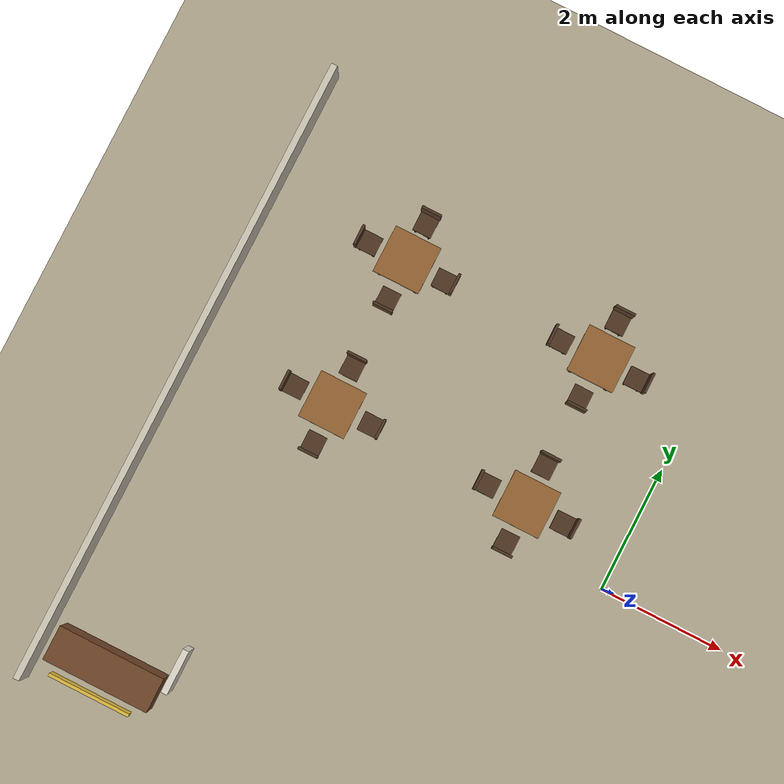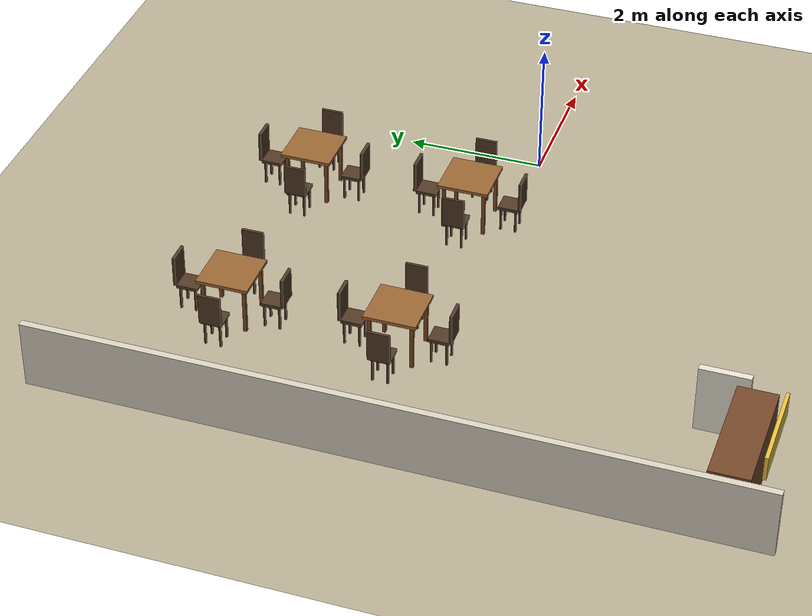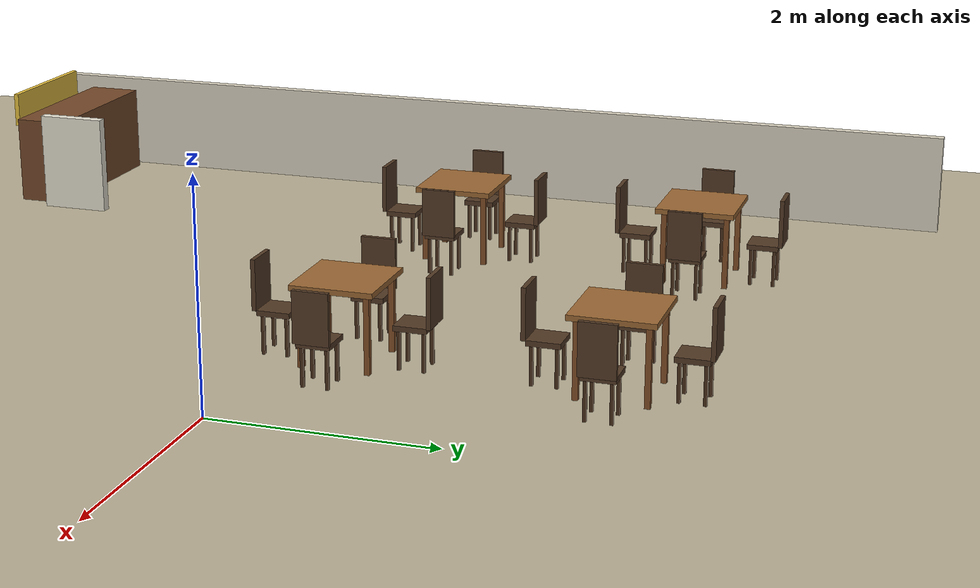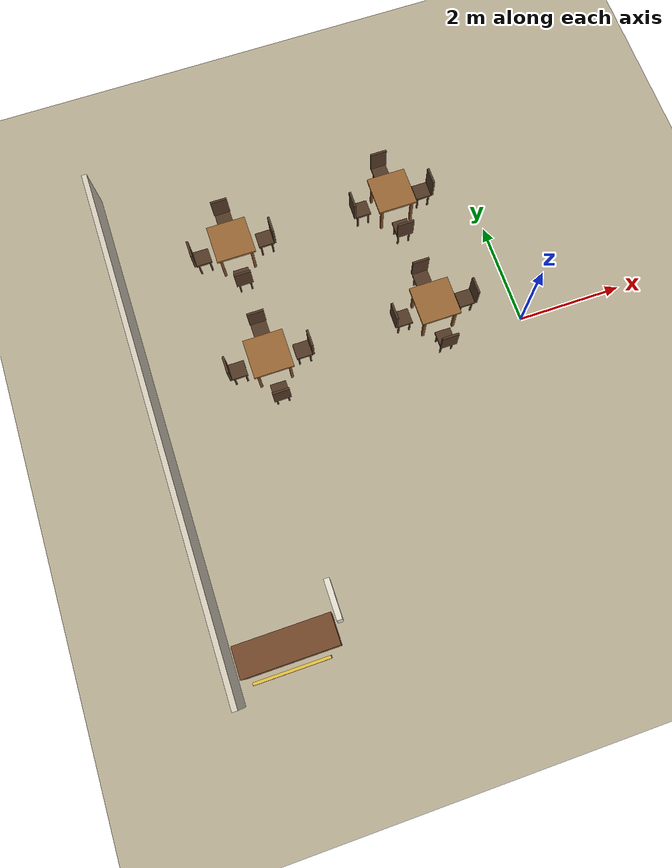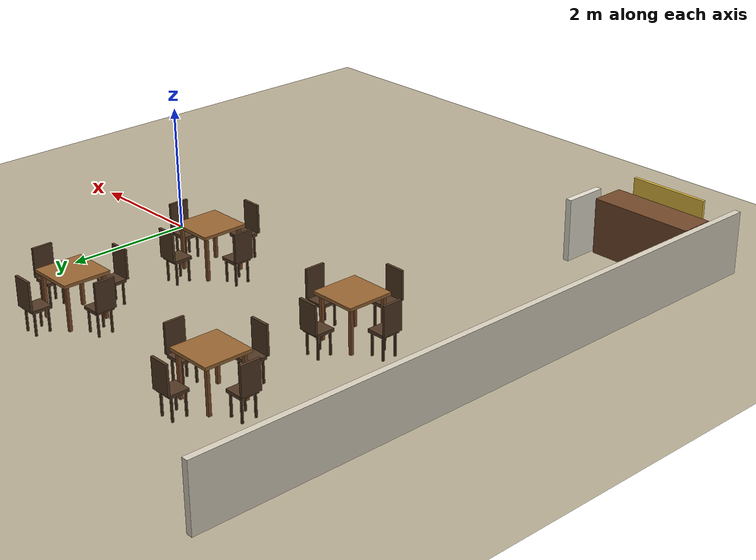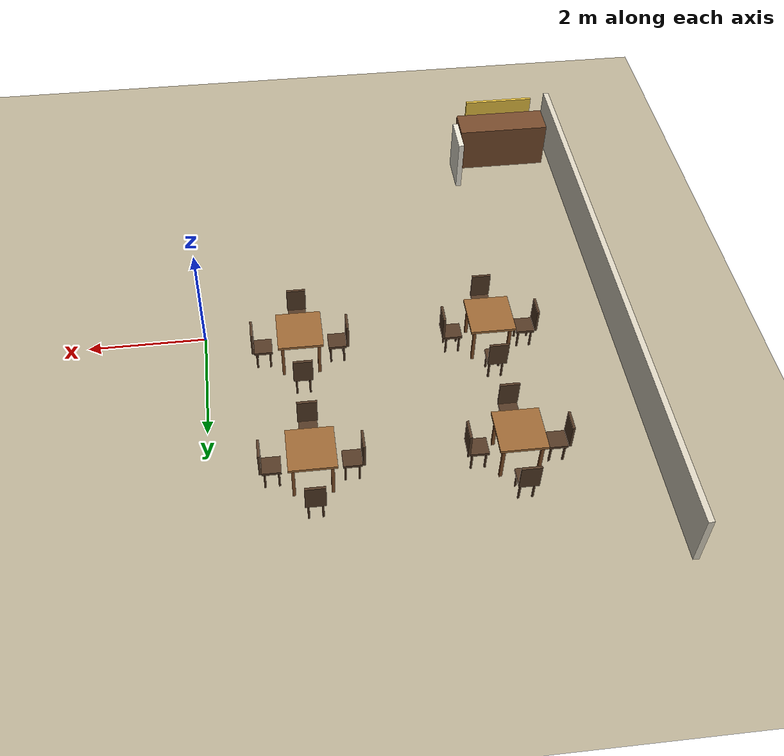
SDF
<sdf version="1.9">
 <world name="restaurant">
  <model name="ground">
   <static>true</static>
   <link name="link">
    <collision name="collision">
     <geometry><plane><normal>0 0 1</normal><size>16 12</size></plane></geometry>
    </collision>
    <visual name="visual">
     <geometry><plane><normal>0 0 1</normal><size>16 12</size></plane></geometry>
     <material><ambient>0.62 0.58 0.50 1</ambient><diffuse>0.72 0.68 0.58 1</diffuse></material>
    </visual>
   </link>
  </model>
  <model name="wall_west">
   <static>true</static>
   <pose>-7.05 0 0.5 0 0 0</pose>
   <link name="link">
    <collision name="c"><geometry><box><size>0.1 10.1 1.0</size></box></geometry></collision>
    <visual name="v">
     <geometry><box><size>0.1 10.1 1.0</size></box></geometry>
     <material><ambient>0.85 0.82 0.75 1</ambient><diffuse>0.85 0.82 0.75 1</diffuse></material>
    </visual>
   </link>
  </model>
  <model name="kitchen_counter">
   <static>true</static>
   <pose>-6.00 -4.35 0.45 0 0 0</pose>
   <link name="link">
    <collision name="c"><geometry><box><size>1.70 0.55 0.90</size></box></geometry></collision>
    <visual name="v">
     <geometry><box><size>1.70 0.55 0.90</size></box></geometry>
     <material><ambient>0.40 0.25 0.15 1</ambient><diffuse>0.45 0.28 0.16 1</diffuse></material>
    </visual>
   </link>
  </model>
  <model name="kitchen_wall">
   <static>true</static>
   <pose>-5.05 -3.90 0.50 0 0 0</pose>
   <link name="link">
    <collision name="c"><geometry><box><size>0.10 0.70 1.00</size></box></geometry></collision>
    <visual name="v">
     <geometry><box><size>0.10 0.70 1.00</size></box></geometry>
     <material><ambient>0.85 0.82 0.75 1</ambient><diffuse>0.90 0.88 0.82 1</diffuse></material>
    </visual>
   </link>
  </model>
  <model name="kitchen_sign">
   <static>true</static>
   <pose>-6.00 -4.75 0.95 0 0 0</pose>
   <link name="link">
    <collision name="c"><geometry><box><size>1.30 0.05 0.35</size></box></geometry></collision>
    <visual name="v">
     <geometry><box><size>1.30 0.05 0.35</size></box></geometry>
     <material><ambient>0.90 0.75 0.25 1</ambient><diffuse>0.90 0.75 0.25 1</diffuse></material>
    </visual>
   </link>
  </model>
  <model name="table_1">
   <static>true</static>
   <pose>-4.800 3.000 0 0 0 0</pose>
   <link name="link">
    <collision name="top_c">
     <pose>0 0 0.72 0 0 0</pose>
     <geometry><box><size>0.75 0.75 0.05</size></box></geometry>
    </collision>
    <visual name="top_v">
     <pose>0 0 0.72 0 0 0</pose>
     <geometry><box><size>0.75 0.75 0.05</size></box></geometry>
     <material><ambient>0.50 0.30 0.15 1</ambient><diffuse>0.60 0.40 0.20 1</diffuse></material>
    </visual>
    <collision name="leg1_c">
     <pose>0.30 0.30 0.36 0 0 0</pose>
     <geometry><box><size>0.05 0.05 0.72</size></box></geometry>
    </collision>
    <visual name="leg1_v">
     <pose>0.30 0.30 0.36 0 0 0</pose>
     <geometry><box><size>0.05 0.05 0.72</size></box></geometry>
     <material><ambient>0.40 0.25 0.10 1</ambient><diffuse>0.50 0.30 0.15 1</diffuse></material>
    </visual>
    <collision name="leg2_c">
     <pose>-0.30 0.30 0.36 0 0 0</pose>
     <geometry><box><size>0.05 0.05 0.72</size></box></geometry>
    </collision>
    <visual name="leg2_v">
     <pose>-0.30 0.30 0.36 0 0 0</pose>
     <geometry><box><size>0.05 0.05 0.72</size></box></geometry>
     <material><ambient>0.40 0.25 0.10 1</ambient><diffuse>0.50 0.30 0.15 1</diffuse></material>
    </visual>
    <collision name="leg3_c">
     <pose>0.30 -0.30 0.36 0 0 0</pose>
     <geometry><box><size>0.05 0.05 0.72</size></box></geometry>
    </collision>
    <visual name="leg3_v">
     <pose>0.30 -0.30 0.36 0 0 0</pose>
     <geometry><box><size>0.05 0.05 0.72</size></box></geometry>
     <material><ambient>0.40 0.25 0.10 1</ambient><diffuse>0.50 0.30 0.15 1</diffuse></material>
    </visual>
    <collision name="leg4_c">
     <pose>-0.30 -0.30 0.36 0 0 0</pose>
     <geometry><box><size>0.05 0.05 0.72</size></box></geometry>
    </collision>
    <visual name="leg4_v">
     <pose>-0.30 -0.30 0.36 0 0 0</pose>
     <geometry><box><size>0.05 0.05 0.72</size></box></geometry>
     <material><ambient>0.40 0.25 0.10 1</ambient><diffuse>0.50 0.30 0.15 1</diffuse></material>
    </visual>
   </link>
  </model>
  <model name="chair_1_north">
   <static>true</static>
   <pose>-4.800 3.620 0 0 0 3.14159</pose>
   <link name="link">
    <collision name="seat_c">
     <pose>0 0 0.38 0 0 0</pose>
     <geometry><box><size>0.30 0.30 0.05</size></box></geometry>
    </collision>
    <visual name="seat_v">
     <pose>0 0 0.38 0 0 0</pose>
     <geometry><box><size>0.30 0.30 0.05</size></box></geometry>
     <material><ambient>0.25 0.18 0.12 1</ambient><diffuse>0.32 0.22 0.14 1</diffuse></material>
    </visual>
    <collision name="back_c">
     <pose>0 -0.17 0.63 0 0 0</pose>
     <geometry><box><size>0.32 0.04 0.46</size></box></geometry>
    </collision>
    <visual name="back_v">
     <pose>0 -0.17 0.63 0 0 0</pose>
     <geometry><box><size>0.32 0.04 0.46</size></box></geometry>
     <material><ambient>0.25 0.18 0.12 1</ambient><diffuse>0.32 0.22 0.14 1</diffuse></material>
    </visual>
    <collision name="leg1_c">
     <pose>0.11 0.11 0.19 0 0 0</pose>
     <geometry><box><size>0.03 0.03 0.38</size></box></geometry>
    </collision>
    <visual name="leg1_v">
     <pose>0.11 0.11 0.19 0 0 0</pose>
     <geometry><box><size>0.03 0.03 0.38</size></box></geometry>
     <material><ambient>0.20 0.12 0.08 1</ambient><diffuse>0.28 0.18 0.10 1</diffuse></material>
    </visual>
    <collision name="leg2_c">
     <pose>-0.11 0.11 0.19 0 0 0</pose>
     <geometry><box><size>0.03 0.03 0.38</size></box></geometry>
    </collision>
    <visual name="leg2_v">
     <pose>-0.11 0.11 0.19 0 0 0</pose>
     <geometry><box><size>0.03 0.03 0.38</size></box></geometry>
     <material><ambient>0.20 0.12 0.08 1</ambient><diffuse>0.28 0.18 0.10 1</diffuse></material>
    </visual>
    <collision name="leg3_c">
     <pose>0.11 -0.11 0.19 0 0 0</pose>
     <geometry><box><size>0.03 0.03 0.38</size></box></geometry>
    </collision>
    <visual name="leg3_v">
     <pose>0.11 -0.11 0.19 0 0 0</pose>
     <geometry><box><size>0.03 0.03 0.38</size></box></geometry>
     <material><ambient>0.20 0.12 0.08 1</ambient><diffuse>0.28 0.18 0.10 1</diffuse></material>
    </visual>
    <collision name="leg4_c">
     <pose>-0.11 -0.11 0.19 0 0 0</pose>
     <geometry><box><size>0.03 0.03 0.38</size></box></geometry>
    </collision>
    <visual name="leg4_v">
     <pose>-0.11 -0.11 0.19 0 0 0</pose>
     <geometry><box><size>0.03 0.03 0.38</size></box></geometry>
     <material><ambient>0.20 0.12 0.08 1</ambient><diffuse>0.28 0.18 0.10 1</diffuse></material>
    </visual>
   </link>
  </model>
  <model name="chair_1_south">
   <static>true</static>
   <pose>-4.800 2.380 0 0 0 0.00000</pose>
   <link name="link">
    <collision name="seat_c">
     <pose>0 0 0.38 0 0 0</pose>
     <geometry><box><size>0.30 0.30 0.05</size></box></geometry>
    </collision>
    <visual name="seat_v">
     <pose>0 0 0.38 0 0 0</pose>
     <geometry><box><size>0.30 0.30 0.05</size></box></geometry>
     <material><ambient>0.25 0.18 0.12 1</ambient><diffuse>0.32 0.22 0.14 1</diffuse></material>
    </visual>
    <collision name="back_c">
     <pose>0 -0.17 0.63 0 0 0</pose>
     <geometry><box><size>0.32 0.04 0.46</size></box></geometry>
    </collision>
    <visual name="back_v">
     <pose>0 -0.17 0.63 0 0 0</pose>
     <geometry><box><size>0.32 0.04 0.46</size></box></geometry>
     <material><ambient>0.25 0.18 0.12 1</ambient><diffuse>0.32 0.22 0.14 1</diffuse></material>
    </visual>
    <collision name="leg1_c">
     <pose>0.11 0.11 0.19 0 0 0</pose>
     <geometry><box><size>0.03 0.03 0.38</size></box></geometry>
    </collision>
    <visual name="leg1_v">
     <pose>0.11 0.11 0.19 0 0 0</pose>
     <geometry><box><size>0.03 0.03 0.38</size></box></geometry>
     <material><ambient>0.20 0.12 0.08 1</ambient><diffuse>0.28 0.18 0.10 1</diffuse></material>
    </visual>
    <collision name="leg2_c">
     <pose>-0.11 0.11 0.19 0 0 0</pose>
     <geometry><box><size>0.03 0.03 0.38</size></box></geometry>
    </collision>
    <visual name="leg2_v">
     <pose>-0.11 0.11 0.19 0 0 0</pose>
     <geometry><box><size>0.03 0.03 0.38</size></box></geometry>
     <material><ambient>0.20 0.12 0.08 1</ambient><diffuse>0.28 0.18 0.10 1</diffuse></material>
    </visual>
    <collision name="leg3_c">
     <pose>0.11 -0.11 0.19 0 0 0</pose>
     <geometry><box><size>0.03 0.03 0.38</size></box></geometry>
    </collision>
    <visual name="leg3_v">
     <pose>0.11 -0.11 0.19 0 0 0</pose>
     <geometry><box><size>0.03 0.03 0.38</size></box></geometry>
     <material><ambient>0.20 0.12 0.08 1</ambient><diffuse>0.28 0.18 0.10 1</diffuse></material>
    </visual>
    <collision name="leg4_c">
     <pose>-0.11 -0.11 0.19 0 0 0</pose>
     <geometry><box><size>0.03 0.03 0.38</size></box></geometry>
    </collision>
    <visual name="leg4_v">
     <pose>-0.11 -0.11 0.19 0 0 0</pose>
     <geometry><box><size>0.03 0.03 0.38</size></box></geometry>
     <material><ambient>0.20 0.12 0.08 1</ambient><diffuse>0.28 0.18 0.10 1</diffuse></material>
    </visual>
   </link>
  </model>
  <model name="chair_1_east">
   <static>true</static>
   <pose>-4.180 3.000 0 0 0 1.57080</pose>
   <link name="link">
    <collision name="seat_c">
     <pose>0 0 0.38 0 0 0</pose>
     <geometry><box><size>0.30 0.30 0.05</size></box></geometry>
    </collision>
    <visual name="seat_v">
     <pose>0 0 0.38 0 0 0</pose>
     <geometry><box><size>0.30 0.30 0.05</size></box></geometry>
     <material><ambient>0.25 0.18 0.12 1</ambient><diffuse>0.32 0.22 0.14 1</diffuse></material>
    </visual>
    <collision name="back_c">
     <pose>0 -0.17 0.63 0 0 0</pose>
     <geometry><box><size>0.32 0.04 0.46</size></box></geometry>
    </collision>
    <visual name="back_v">
     <pose>0 -0.17 0.63 0 0 0</pose>
     <geometry><box><size>0.32 0.04 0.46</size></box></geometry>
     <material><ambient>0.25 0.18 0.12 1</ambient><diffuse>0.32 0.22 0.14 1</diffuse></material>
    </visual>
    <collision name="leg1_c">
     <pose>0.11 0.11 0.19 0 0 0</pose>
     <geometry><box><size>0.03 0.03 0.38</size></box></geometry>
    </collision>
    <visual name="leg1_v">
     <pose>0.11 0.11 0.19 0 0 0</pose>
     <geometry><box><size>0.03 0.03 0.38</size></box></geometry>
     <material><ambient>0.20 0.12 0.08 1</ambient><diffuse>0.28 0.18 0.10 1</diffuse></material>
    </visual>
    <collision name="leg2_c">
     <pose>-0.11 0.11 0.19 0 0 0</pose>
     <geometry><box><size>0.03 0.03 0.38</size></box></geometry>
    </collision>
    <visual name="leg2_v">
     <pose>-0.11 0.11 0.19 0 0 0</pose>
     <geometry><box><size>0.03 0.03 0.38</size></box></geometry>
     <material><ambient>0.20 0.12 0.08 1</ambient><diffuse>0.28 0.18 0.10 1</diffuse></material>
    </visual>
    <collision name="leg3_c">
     <pose>0.11 -0.11 0.19 0 0 0</pose>
     <geometry><box><size>0.03 0.03 0.38</size></box></geometry>
    </collision>
    <visual name="leg3_v">
     <pose>0.11 -0.11 0.19 0 0 0</pose>
     <geometry><box><size>0.03 0.03 0.38</size></box></geometry>
     <material><ambient>0.20 0.12 0.08 1</ambient><diffuse>0.28 0.18 0.10 1</diffuse></material>
    </visual>
    <collision name="leg4_c">
     <pose>-0.11 -0.11 0.19 0 0 0</pose>
     <geometry><box><size>0.03 0.03 0.38</size></box></geometry>
    </collision>
    <visual name="leg4_v">
     <pose>-0.11 -0.11 0.19 0 0 0</pose>
     <geometry><box><size>0.03 0.03 0.38</size></box></geometry>
     <material><ambient>0.20 0.12 0.08 1</ambient><diffuse>0.28 0.18 0.10 1</diffuse></material>
    </visual>
   </link>
  </model>
  <model name="chair_1_west">
   <static>true</static>
   <pose>-5.420 3.000 0 0 0 -1.57080</pose>
   <link name="link">
    <collision name="seat_c">
     <pose>0 0 0.38 0 0 0</pose>
     <geometry><box><size>0.30 0.30 0.05</size></box></geometry>
    </collision>
    <visual name="seat_v">
     <pose>0 0 0.38 0 0 0</pose>
     <geometry><box><size>0.30 0.30 0.05</size></box></geometry>
     <material><ambient>0.25 0.18 0.12 1</ambient><diffuse>0.32 0.22 0.14 1</diffuse></material>
    </visual>
    <collision name="back_c">
     <pose>0 -0.17 0.63 0 0 0</pose>
     <geometry><box><size>0.32 0.04 0.46</size></box></geometry>
    </collision>
    <visual name="back_v">
     <pose>0 -0.17 0.63 0 0 0</pose>
     <geometry><box><size>0.32 0.04 0.46</size></box></geometry>
     <material><ambient>0.25 0.18 0.12 1</ambient><diffuse>0.32 0.22 0.14 1</diffuse></material>
    </visual>
    <collision name="leg1_c">
     <pose>0.11 0.11 0.19 0 0 0</pose>
     <geometry><box><size>0.03 0.03 0.38</size></box></geometry>
    </collision>
    <visual name="leg1_v">
     <pose>0.11 0.11 0.19 0 0 0</pose>
     <geometry><box><size>0.03 0.03 0.38</size></box></geometry>
     <material><ambient>0.20 0.12 0.08 1</ambient><diffuse>0.28 0.18 0.10 1</diffuse></material>
    </visual>
    <collision name="leg2_c">
     <pose>-0.11 0.11 0.19 0 0 0</pose>
     <geometry><box><size>0.03 0.03 0.38</size></box></geometry>
    </collision>
    <visual name="leg2_v">
     <pose>-0.11 0.11 0.19 0 0 0</pose>
     <geometry><box><size>0.03 0.03 0.38</size></box></geometry>
     <material><ambient>0.20 0.12 0.08 1</ambient><diffuse>0.28 0.18 0.10 1</diffuse></material>
    </visual>
    <collision name="leg3_c">
     <pose>0.11 -0.11 0.19 0 0 0</pose>
     <geometry><box><size>0.03 0.03 0.38</size></box></geometry>
    </collision>
    <visual name="leg3_v">
     <pose>0.11 -0.11 0.19 0 0 0</pose>
     <geometry><box><size>0.03 0.03 0.38</size></box></geometry>
     <material><ambient>0.20 0.12 0.08 1</ambient><diffuse>0.28 0.18 0.10 1</diffuse></material>
    </visual>
    <collision name="leg4_c">
     <pose>-0.11 -0.11 0.19 0 0 0</pose>
     <geometry><box><size>0.03 0.03 0.38</size></box></geometry>
    </collision>
    <visual name="leg4_v">
     <pose>-0.11 -0.11 0.19 0 0 0</pose>
     <geometry><box><size>0.03 0.03 0.38</size></box></geometry>
     <material><ambient>0.20 0.12 0.08 1</ambient><diffuse>0.28 0.18 0.10 1</diffuse></material>
    </visual>
   </link>
  </model>
  <model name="table_2">
   <static>true</static>
   <pose>-1.600 3.000 0 0 0 0</pose>
   <link name="link">
    <collision name="top_c">
     <pose>0 0 0.72 0 0 0</pose>
     <geometry><box><size>0.75 0.75 0.05</size></box></geometry>
    </collision>
    <visual name="top_v">
     <pose>0 0 0.72 0 0 0</pose>
     <geometry><box><size>0.75 0.75 0.05</size></box></geometry>
     <material><ambient>0.50 0.30 0.15 1</ambient><diffuse>0.60 0.40 0.20 1</diffuse></material>
    </visual>
    <collision name="leg1_c">
     <pose>0.30 0.30 0.36 0 0 0</pose>
     <geometry><box><size>0.05 0.05 0.72</size></box></geometry>
    </collision>
    <visual name="leg1_v">
     <pose>0.30 0.30 0.36 0 0 0</pose>
     <geometry><box><size>0.05 0.05 0.72</size></box></geometry>
     <material><ambient>0.40 0.25 0.10 1</ambient><diffuse>0.50 0.30 0.15 1</diffuse></material>
    </visual>
    <collision name="leg2_c">
     <pose>-0.30 0.30 0.36 0 0 0</pose>
     <geometry><box><size>0.05 0.05 0.72</size></box></geometry>
    </collision>
    <visual name="leg2_v">
     <pose>-0.30 0.30 0.36 0 0 0</pose>
     <geometry><box><size>0.05 0.05 0.72</size></box></geometry>
     <material><ambient>0.40 0.25 0.10 1</ambient><diffuse>0.50 0.30 0.15 1</diffuse></material>
    </visual>
    <collision name="leg3_c">
     <pose>0.30 -0.30 0.36 0 0 0</pose>
     <geometry><box><size>0.05 0.05 0.72</size></box></geometry>
    </collision>
    <visual name="leg3_v">
     <pose>0.30 -0.30 0.36 0 0 0</pose>
     <geometry><box><size>0.05 0.05 0.72</size></box></geometry>
     <material><ambient>0.40 0.25 0.10 1</ambient><diffuse>0.50 0.30 0.15 1</diffuse></material>
    </visual>
    <collision name="leg4_c">
     <pose>-0.30 -0.30 0.36 0 0 0</pose>
     <geometry><box><size>0.05 0.05 0.72</size></box></geometry>
    </collision>
    <visual name="leg4_v">
     <pose>-0.30 -0.30 0.36 0 0 0</pose>
     <geometry><box><size>0.05 0.05 0.72</size></box></geometry>
     <material><ambient>0.40 0.25 0.10 1</ambient><diffuse>0.50 0.30 0.15 1</diffuse></material>
    </visual>
   </link>
  </model>
  <model name="chair_2_north">
   <static>true</static>
   <pose>-1.600 3.620 0 0 0 3.14159</pose>
   <link name="link">
    <collision name="seat_c">
     <pose>0 0 0.38 0 0 0</pose>
     <geometry><box><size>0.30 0.30 0.05</size></box></geometry>
    </collision>
    <visual name="seat_v">
     <pose>0 0 0.38 0 0 0</pose>
     <geometry><box><size>0.30 0.30 0.05</size></box></geometry>
     <material><ambient>0.25 0.18 0.12 1</ambient><diffuse>0.32 0.22 0.14 1</diffuse></material>
    </visual>
    <collision name="back_c">
     <pose>0 -0.17 0.63 0 0 0</pose>
     <geometry><box><size>0.32 0.04 0.46</size></box></geometry>
    </collision>
    <visual name="back_v">
     <pose>0 -0.17 0.63 0 0 0</pose>
     <geometry><box><size>0.32 0.04 0.46</size></box></geometry>
     <material><ambient>0.25 0.18 0.12 1</ambient><diffuse>0.32 0.22 0.14 1</diffuse></material>
    </visual>
    <collision name="leg1_c">
     <pose>0.11 0.11 0.19 0 0 0</pose>
     <geometry><box><size>0.03 0.03 0.38</size></box></geometry>
    </collision>
    <visual name="leg1_v">
     <pose>0.11 0.11 0.19 0 0 0</pose>
     <geometry><box><size>0.03 0.03 0.38</size></box></geometry>
     <material><ambient>0.20 0.12 0.08 1</ambient><diffuse>0.28 0.18 0.10 1</diffuse></material>
    </visual>
    <collision name="leg2_c">
     <pose>-0.11 0.11 0.19 0 0 0</pose>
     <geometry><box><size>0.03 0.03 0.38</size></box></geometry>
    </collision>
    <visual name="leg2_v">
     <pose>-0.11 0.11 0.19 0 0 0</pose>
     <geometry><box><size>0.03 0.03 0.38</size></box></geometry>
     <material><ambient>0.20 0.12 0.08 1</ambient><diffuse>0.28 0.18 0.10 1</diffuse></material>
    </visual>
    <collision name="leg3_c">
     <pose>0.11 -0.11 0.19 0 0 0</pose>
     <geometry><box><size>0.03 0.03 0.38</size></box></geometry>
    </collision>
    <visual name="leg3_v">
     <pose>0.11 -0.11 0.19 0 0 0</pose>
     <geometry><box><size>0.03 0.03 0.38</size></box></geometry>
     <material><ambient>0.20 0.12 0.08 1</ambient><diffuse>0.28 0.18 0.10 1</diffuse></material>
    </visual>
    <collision name="leg4_c">
     <pose>-0.11 -0.11 0.19 0 0 0</pose>
     <geometry><box><size>0.03 0.03 0.38</size></box></geometry>
    </collision>
    <visual name="leg4_v">
     <pose>-0.11 -0.11 0.19 0 0 0</pose>
     <geometry><box><size>0.03 0.03 0.38</size></box></geometry>
     <material><ambient>0.20 0.12 0.08 1</ambient><diffuse>0.28 0.18 0.10 1</diffuse></material>
    </visual>
   </link>
  </model>
  <model name="chair_2_south">
   <static>true</static>
   <pose>-1.600 2.380 0 0 0 0.00000</pose>
   <link name="link">
    <collision name="seat_c">
     <pose>0 0 0.38 0 0 0</pose>
     <geometry><box><size>0.30 0.30 0.05</size></box></geometry>
    </collision>
    <visual name="seat_v">
     <pose>0 0 0.38 0 0 0</pose>
     <geometry><box><size>0.30 0.30 0.05</size></box></geometry>
     <material><ambient>0.25 0.18 0.12 1</ambient><diffuse>0.32 0.22 0.14 1</diffuse></material>
    </visual>
    <collision name="back_c">
     <pose>0 -0.17 0.63 0 0 0</pose>
     <geometry><box><size>0.32 0.04 0.46</size></box></geometry>
    </collision>
    <visual name="back_v">
     <pose>0 -0.17 0.63 0 0 0</pose>
     <geometry><box><size>0.32 0.04 0.46</size></box></geometry>
     <material><ambient>0.25 0.18 0.12 1</ambient><diffuse>0.32 0.22 0.14 1</diffuse></material>
    </visual>
    <collision name="leg1_c">
     <pose>0.11 0.11 0.19 0 0 0</pose>
     <geometry><box><size>0.03 0.03 0.38</size></box></geometry>
    </collision>
    <visual name="leg1_v">
     <pose>0.11 0.11 0.19 0 0 0</pose>
     <geometry><box><size>0.03 0.03 0.38</size></box></geometry>
     <material><ambient>0.20 0.12 0.08 1</ambient><diffuse>0.28 0.18 0.10 1</diffuse></material>
    </visual>
    <collision name="leg2_c">
     <pose>-0.11 0.11 0.19 0 0 0</pose>
     <geometry><box><size>0.03 0.03 0.38</size></box></geometry>
    </collision>
    <visual name="leg2_v">
     <pose>-0.11 0.11 0.19 0 0 0</pose>
     <geometry><box><size>0.03 0.03 0.38</size></box></geometry>
     <material><ambient>0.20 0.12 0.08 1</ambient><diffuse>0.28 0.18 0.10 1</diffuse></material>
    </visual>
    <collision name="leg3_c">
     <pose>0.11 -0.11 0.19 0 0 0</pose>
     <geometry><box><size>0.03 0.03 0.38</size></box></geometry>
    </collision>
    <visual name="leg3_v">
     <pose>0.11 -0.11 0.19 0 0 0</pose>
     <geometry><box><size>0.03 0.03 0.38</size></box></geometry>
     <material><ambient>0.20 0.12 0.08 1</ambient><diffuse>0.28 0.18 0.10 1</diffuse></material>
    </visual>
    <collision name="leg4_c">
     <pose>-0.11 -0.11 0.19 0 0 0</pose>
     <geometry><box><size>0.03 0.03 0.38</size></box></geometry>
    </collision>
    <visual name="leg4_v">
     <pose>-0.11 -0.11 0.19 0 0 0</pose>
     <geometry><box><size>0.03 0.03 0.38</size></box></geometry>
     <material><ambient>0.20 0.12 0.08 1</ambient><diffuse>0.28 0.18 0.10 1</diffuse></material>
    </visual>
   </link>
  </model>
  <model name="chair_2_east">
   <static>true</static>
   <pose>-0.980 3.000 0 0 0 1.57080</pose>
   <link name="link">
    <collision name="seat_c">
     <pose>0 0 0.38 0 0 0</pose>
     <geometry><box><size>0.30 0.30 0.05</size></box></geometry>
    </collision>
    <visual name="seat_v">
     <pose>0 0 0.38 0 0 0</pose>
     <geometry><box><size>0.30 0.30 0.05</size></box></geometry>
     <material><ambient>0.25 0.18 0.12 1</ambient><diffuse>0.32 0.22 0.14 1</diffuse></material>
    </visual>
    <collision name="back_c">
     <pose>0 -0.17 0.63 0 0 0</pose>
     <geometry><box><size>0.32 0.04 0.46</size></box></geometry>
    </collision>
    <visual name="back_v">
     <pose>0 -0.17 0.63 0 0 0</pose>
     <geometry><box><size>0.32 0.04 0.46</size></box></geometry>
     <material><ambient>0.25 0.18 0.12 1</ambient><diffuse>0.32 0.22 0.14 1</diffuse></material>
    </visual>
    <collision name="leg1_c">
     <pose>0.11 0.11 0.19 0 0 0</pose>
     <geometry><box><size>0.03 0.03 0.38</size></box></geometry>
    </collision>
    <visual name="leg1_v">
     <pose>0.11 0.11 0.19 0 0 0</pose>
     <geometry><box><size>0.03 0.03 0.38</size></box></geometry>
     <material><ambient>0.20 0.12 0.08 1</ambient><diffuse>0.28 0.18 0.10 1</diffuse></material>
    </visual>
    <collision name="leg2_c">
     <pose>-0.11 0.11 0.19 0 0 0</pose>
     <geometry><box><size>0.03 0.03 0.38</size></box></geometry>
    </collision>
    <visual name="leg2_v">
     <pose>-0.11 0.11 0.19 0 0 0</pose>
     <geometry><box><size>0.03 0.03 0.38</size></box></geometry>
     <material><ambient>0.20 0.12 0.08 1</ambient><diffuse>0.28 0.18 0.10 1</diffuse></material>
    </visual>
    <collision name="leg3_c">
     <pose>0.11 -0.11 0.19 0 0 0</pose>
     <geometry><box><size>0.03 0.03 0.38</size></box></geometry>
    </collision>
    <visual name="leg3_v">
     <pose>0.11 -0.11 0.19 0 0 0</pose>
     <geometry><box><size>0.03 0.03 0.38</size></box></geometry>
     <material><ambient>0.20 0.12 0.08 1</ambient><diffuse>0.28 0.18 0.10 1</diffuse></material>
    </visual>
    <collision name="leg4_c">
     <pose>-0.11 -0.11 0.19 0 0 0</pose>
     <geometry><box><size>0.03 0.03 0.38</size></box></geometry>
    </collision>
    <visual name="leg4_v">
     <pose>-0.11 -0.11 0.19 0 0 0</pose>
     <geometry><box><size>0.03 0.03 0.38</size></box></geometry>
     <material><ambient>0.20 0.12 0.08 1</ambient><diffuse>0.28 0.18 0.10 1</diffuse></material>
    </visual>
   </link>
  </model>
  <model name="chair_2_west">
   <static>true</static>
   <pose>-2.220 3.000 0 0 0 -1.57080</pose>
   <link name="link">
    <collision name="seat_c">
     <pose>0 0 0.38 0 0 0</pose>
     <geometry><box><size>0.30 0.30 0.05</size></box></geometry>
    </collision>
    <visual name="seat_v">
     <pose>0 0 0.38 0 0 0</pose>
     <geometry><box><size>0.30 0.30 0.05</size></box></geometry>
     <material><ambient>0.25 0.18 0.12 1</ambient><diffuse>0.32 0.22 0.14 1</diffuse></material>
    </visual>
    <collision name="back_c">
     <pose>0 -0.17 0.63 0 0 0</pose>
     <geometry><box><size>0.32 0.04 0.46</size></box></geometry>
    </collision>
    <visual name="back_v">
     <pose>0 -0.17 0.63 0 0 0</pose>
     <geometry><box><size>0.32 0.04 0.46</size></box></geometry>
     <material><ambient>0.25 0.18 0.12 1</ambient><diffuse>0.32 0.22 0.14 1</diffuse></material>
    </visual>
    <collision name="leg1_c">
     <pose>0.11 0.11 0.19 0 0 0</pose>
     <geometry><box><size>0.03 0.03 0.38</size></box></geometry>
    </collision>
    <visual name="leg1_v">
     <pose>0.11 0.11 0.19 0 0 0</pose>
     <geometry><box><size>0.03 0.03 0.38</size></box></geometry>
     <material><ambient>0.20 0.12 0.08 1</ambient><diffuse>0.28 0.18 0.10 1</diffuse></material>
    </visual>
    <collision name="leg2_c">
     <pose>-0.11 0.11 0.19 0 0 0</pose>
     <geometry><box><size>0.03 0.03 0.38</size></box></geometry>
    </collision>
    <visual name="leg2_v">
     <pose>-0.11 0.11 0.19 0 0 0</pose>
     <geometry><box><size>0.03 0.03 0.38</size></box></geometry>
     <material><ambient>0.20 0.12 0.08 1</ambient><diffuse>0.28 0.18 0.10 1</diffuse></material>
    </visual>
    <collision name="leg3_c">
     <pose>0.11 -0.11 0.19 0 0 0</pose>
     <geometry><box><size>0.03 0.03 0.38</size></box></geometry>
    </collision>
    <visual name="leg3_v">
     <pose>0.11 -0.11 0.19 0 0 0</pose>
     <geometry><box><size>0.03 0.03 0.38</size></box></geometry>
     <material><ambient>0.20 0.12 0.08 1</ambient><diffuse>0.28 0.18 0.10 1</diffuse></material>
    </visual>
    <collision name="leg4_c">
     <pose>-0.11 -0.11 0.19 0 0 0</pose>
     <geometry><box><size>0.03 0.03 0.38</size></box></geometry>
    </collision>
    <visual name="leg4_v">
     <pose>-0.11 -0.11 0.19 0 0 0</pose>
     <geometry><box><size>0.03 0.03 0.38</size></box></geometry>
     <material><ambient>0.20 0.12 0.08 1</ambient><diffuse>0.28 0.18 0.10 1</diffuse></material>
    </visual>
   </link>
  </model>
  <model name="table_5">
   <static>true</static>
   <pose>-4.800 0.600 0 0 0 0</pose>
   <link name="link">
    <collision name="top_c">
     <pose>0 0 0.72 0 0 0</pose>
     <geometry><box><size>0.75 0.75 0.05</size></box></geometry>
    </collision>
    <visual name="top_v">
     <pose>0 0 0.72 0 0 0</pose>
     <geometry><box><size>0.75 0.75 0.05</size></box></geometry>
     <material><ambient>0.50 0.30 0.15 1</ambient><diffuse>0.60 0.40 0.20 1</diffuse></material>
    </visual>
    <collision name="leg1_c">
     <pose>0.30 0.30 0.36 0 0 0</pose>
     <geometry><box><size>0.05 0.05 0.72</size></box></geometry>
    </collision>
    <visual name="leg1_v">
     <pose>0.30 0.30 0.36 0 0 0</pose>
     <geometry><box><size>0.05 0.05 0.72</size></box></geometry>
     <material><ambient>0.40 0.25 0.10 1</ambient><diffuse>0.50 0.30 0.15 1</diffuse></material>
    </visual>
    <collision name="leg2_c">
     <pose>-0.30 0.30 0.36 0 0 0</pose>
     <geometry><box><size>0.05 0.05 0.72</size></box></geometry>
    </collision>
    <visual name="leg2_v">
     <pose>-0.30 0.30 0.36 0 0 0</pose>
     <geometry><box><size>0.05 0.05 0.72</size></box></geometry>
     <material><ambient>0.40 0.25 0.10 1</ambient><diffuse>0.50 0.30 0.15 1</diffuse></material>
    </visual>
    <collision name="leg3_c">
     <pose>0.30 -0.30 0.36 0 0 0</pose>
     <geometry><box><size>0.05 0.05 0.72</size></box></geometry>
    </collision>
    <visual name="leg3_v">
     <pose>0.30 -0.30 0.36 0 0 0</pose>
     <geometry><box><size>0.05 0.05 0.72</size></box></geometry>
     <material><ambient>0.40 0.25 0.10 1</ambient><diffuse>0.50 0.30 0.15 1</diffuse></material>
    </visual>
    <collision name="leg4_c">
     <pose>-0.30 -0.30 0.36 0 0 0</pose>
     <geometry><box><size>0.05 0.05 0.72</size></box></geometry>
    </collision>
    <visual name="leg4_v">
     <pose>-0.30 -0.30 0.36 0 0 0</pose>
     <geometry><box><size>0.05 0.05 0.72</size></box></geometry>
     <material><ambient>0.40 0.25 0.10 1</ambient><diffuse>0.50 0.30 0.15 1</diffuse></material>
    </visual>
   </link>
  </model>
  <model name="chair_5_north">
   <static>true</static>
   <pose>-4.800 1.220 0 0 0 3.14159</pose>
   <link name="link">
    <collision name="seat_c">
     <pose>0 0 0.38 0 0 0</pose>
     <geometry><box><size>0.30 0.30 0.05</size></box></geometry>
    </collision>
    <visual name="seat_v">
     <pose>0 0 0.38 0 0 0</pose>
     <geometry><box><size>0.30 0.30 0.05</size></box></geometry>
     <material><ambient>0.25 0.18 0.12 1</ambient><diffuse>0.32 0.22 0.14 1</diffuse></material>
    </visual>
    <collision name="back_c">
     <pose>0 -0.17 0.63 0 0 0</pose>
     <geometry><box><size>0.32 0.04 0.46</size></box></geometry>
    </collision>
    <visual name="back_v">
     <pose>0 -0.17 0.63 0 0 0</pose>
     <geometry><box><size>0.32 0.04 0.46</size></box></geometry>
     <material><ambient>0.25 0.18 0.12 1</ambient><diffuse>0.32 0.22 0.14 1</diffuse></material>
    </visual>
    <collision name="leg1_c">
     <pose>0.11 0.11 0.19 0 0 0</pose>
     <geometry><box><size>0.03 0.03 0.38</size></box></geometry>
    </collision>
    <visual name="leg1_v">
     <pose>0.11 0.11 0.19 0 0 0</pose>
     <geometry><box><size>0.03 0.03 0.38</size></box></geometry>
     <material><ambient>0.20 0.12 0.08 1</ambient><diffuse>0.28 0.18 0.10 1</diffuse></material>
    </visual>
    <collision name="leg2_c">
     <pose>-0.11 0.11 0.19 0 0 0</pose>
     <geometry><box><size>0.03 0.03 0.38</size></box></geometry>
    </collision>
    <visual name="leg2_v">
     <pose>-0.11 0.11 0.19 0 0 0</pose>
     <geometry><box><size>0.03 0.03 0.38</size></box></geometry>
     <material><ambient>0.20 0.12 0.08 1</ambient><diffuse>0.28 0.18 0.10 1</diffuse></material>
    </visual>
    <collision name="leg3_c">
     <pose>0.11 -0.11 0.19 0 0 0</pose>
     <geometry><box><size>0.03 0.03 0.38</size></box></geometry>
    </collision>
    <visual name="leg3_v">
     <pose>0.11 -0.11 0.19 0 0 0</pose>
     <geometry><box><size>0.03 0.03 0.38</size></box></geometry>
     <material><ambient>0.20 0.12 0.08 1</ambient><diffuse>0.28 0.18 0.10 1</diffuse></material>
    </visual>
    <collision name="leg4_c">
     <pose>-0.11 -0.11 0.19 0 0 0</pose>
     <geometry><box><size>0.03 0.03 0.38</size></box></geometry>
    </collision>
    <visual name="leg4_v">
     <pose>-0.11 -0.11 0.19 0 0 0</pose>
     <geometry><box><size>0.03 0.03 0.38</size></box></geometry>
     <material><ambient>0.20 0.12 0.08 1</ambient><diffuse>0.28 0.18 0.10 1</diffuse></material>
    </visual>
   </link>
  </model>
  <model name="chair_5_south">
   <static>true</static>
   <pose>-4.800 -0.020 0 0 0 0.00000</pose>
   <link name="link">
    <collision name="seat_c">
     <pose>0 0 0.38 0 0 0</pose>
     <geometry><box><size>0.30 0.30 0.05</size></box></geometry>
    </collision>
    <visual name="seat_v">
     <pose>0 0 0.38 0 0 0</pose>
     <geometry><box><size>0.30 0.30 0.05</size></box></geometry>
     <material><ambient>0.25 0.18 0.12 1</ambient><diffuse>0.32 0.22 0.14 1</diffuse></material>
    </visual>
    <collision name="back_c">
     <pose>0 -0.17 0.63 0 0 0</pose>
     <geometry><box><size>0.32 0.04 0.46</size></box></geometry>
    </collision>
    <visual name="back_v">
     <pose>0 -0.17 0.63 0 0 0</pose>
     <geometry><box><size>0.32 0.04 0.46</size></box></geometry>
     <material><ambient>0.25 0.18 0.12 1</ambient><diffuse>0.32 0.22 0.14 1</diffuse></material>
    </visual>
    <collision name="leg1_c">
     <pose>0.11 0.11 0.19 0 0 0</pose>
     <geometry><box><size>0.03 0.03 0.38</size></box></geometry>
    </collision>
    <visual name="leg1_v">
     <pose>0.11 0.11 0.19 0 0 0</pose>
     <geometry><box><size>0.03 0.03 0.38</size></box></geometry>
     <material><ambient>0.20 0.12 0.08 1</ambient><diffuse>0.28 0.18 0.10 1</diffuse></material>
    </visual>
    <collision name="leg2_c">
     <pose>-0.11 0.11 0.19 0 0 0</pose>
     <geometry><box><size>0.03 0.03 0.38</size></box></geometry>
    </collision>
    <visual name="leg2_v">
     <pose>-0.11 0.11 0.19 0 0 0</pose>
     <geometry><box><size>0.03 0.03 0.38</size></box></geometry>
     <material><ambient>0.20 0.12 0.08 1</ambient><diffuse>0.28 0.18 0.10 1</diffuse></material>
    </visual>
    <collision name="leg3_c">
     <pose>0.11 -0.11 0.19 0 0 0</pose>
     <geometry><box><size>0.03 0.03 0.38</size></box></geometry>
    </collision>
    <visual name="leg3_v">
     <pose>0.11 -0.11 0.19 0 0 0</pose>
     <geometry><box><size>0.03 0.03 0.38</size></box></geometry>
     <material><ambient>0.20 0.12 0.08 1</ambient><diffuse>0.28 0.18 0.10 1</diffuse></material>
    </visual>
    <collision name="leg4_c">
     <pose>-0.11 -0.11 0.19 0 0 0</pose>
     <geometry><box><size>0.03 0.03 0.38</size></box></geometry>
    </collision>
    <visual name="leg4_v">
     <pose>-0.11 -0.11 0.19 0 0 0</pose>
     <geometry><box><size>0.03 0.03 0.38</size></box></geometry>
     <material><ambient>0.20 0.12 0.08 1</ambient><diffuse>0.28 0.18 0.10 1</diffuse></material>
    </visual>
   </link>
  </model>
  <model name="chair_5_east">
   <static>true</static>
   <pose>-4.180 0.600 0 0 0 1.57080</pose>
   <link name="link">
    <collision name="seat_c">
     <pose>0 0 0.38 0 0 0</pose>
     <geometry><box><size>0.30 0.30 0.05</size></box></geometry>
    </collision>
    <visual name="seat_v">
     <pose>0 0 0.38 0 0 0</pose>
     <geometry><box><size>0.30 0.30 0.05</size></box></geometry>
     <material><ambient>0.25 0.18 0.12 1</ambient><diffuse>0.32 0.22 0.14 1</diffuse></material>
    </visual>
    <collision name="back_c">
     <pose>0 -0.17 0.63 0 0 0</pose>
     <geometry><box><size>0.32 0.04 0.46</size></box></geometry>
    </collision>
    <visual name="back_v">
     <pose>0 -0.17 0.63 0 0 0</pose>
     <geometry><box><size>0.32 0.04 0.46</size></box></geometry>
     <material><ambient>0.25 0.18 0.12 1</ambient><diffuse>0.32 0.22 0.14 1</diffuse></material>
    </visual>
    <collision name="leg1_c">
     <pose>0.11 0.11 0.19 0 0 0</pose>
     <geometry><box><size>0.03 0.03 0.38</size></box></geometry>
    </collision>
    <visual name="leg1_v">
     <pose>0.11 0.11 0.19 0 0 0</pose>
     <geometry><box><size>0.03 0.03 0.38</size></box></geometry>
     <material><ambient>0.20 0.12 0.08 1</ambient><diffuse>0.28 0.18 0.10 1</diffuse></material>
    </visual>
    <collision name="leg2_c">
     <pose>-0.11 0.11 0.19 0 0 0</pose>
     <geometry><box><size>0.03 0.03 0.38</size></box></geometry>
    </collision>
    <visual name="leg2_v">
     <pose>-0.11 0.11 0.19 0 0 0</pose>
     <geometry><box><size>0.03 0.03 0.38</size></box></geometry>
     <material><ambient>0.20 0.12 0.08 1</ambient><diffuse>0.28 0.18 0.10 1</diffuse></material>
    </visual>
    <collision name="leg3_c">
     <pose>0.11 -0.11 0.19 0 0 0</pose>
     <geometry><box><size>0.03 0.03 0.38</size></box></geometry>
    </collision>
    <visual name="leg3_v">
     <pose>0.11 -0.11 0.19 0 0 0</pose>
     <geometry><box><size>0.03 0.03 0.38</size></box></geometry>
     <material><ambient>0.20 0.12 0.08 1</ambient><diffuse>0.28 0.18 0.10 1</diffuse></material>
    </visual>
    <collision name="leg4_c">
     <pose>-0.11 -0.11 0.19 0 0 0</pose>
     <geometry><box><size>0.03 0.03 0.38</size></box></geometry>
    </collision>
    <visual name="leg4_v">
     <pose>-0.11 -0.11 0.19 0 0 0</pose>
     <geometry><box><size>0.03 0.03 0.38</size></box></geometry>
     <material><ambient>0.20 0.12 0.08 1</ambient><diffuse>0.28 0.18 0.10 1</diffuse></material>
    </visual>
   </link>
  </model>
  <model name="chair_5_west">
   <static>true</static>
   <pose>-5.420 0.600 0 0 0 -1.57080</pose>
   <link name="link">
    <collision name="seat_c">
     <pose>0 0 0.38 0 0 0</pose>
     <geometry><box><size>0.30 0.30 0.05</size></box></geometry>
    </collision>
    <visual name="seat_v">
     <pose>0 0 0.38 0 0 0</pose>
     <geometry><box><size>0.30 0.30 0.05</size></box></geometry>
     <material><ambient>0.25 0.18 0.12 1</ambient><diffuse>0.32 0.22 0.14 1</diffuse></material>
    </visual>
    <collision name="back_c">
     <pose>0 -0.17 0.63 0 0 0</pose>
     <geometry><box><size>0.32 0.04 0.46</size></box></geometry>
    </collision>
    <visual name="back_v">
     <pose>0 -0.17 0.63 0 0 0</pose>
     <geometry><box><size>0.32 0.04 0.46</size></box></geometry>
     <material><ambient>0.25 0.18 0.12 1</ambient><diffuse>0.32 0.22 0.14 1</diffuse></material>
    </visual>
    <collision name="leg1_c">
     <pose>0.11 0.11 0.19 0 0 0</pose>
     <geometry><box><size>0.03 0.03 0.38</size></box></geometry>
    </collision>
    <visual name="leg1_v">
     <pose>0.11 0.11 0.19 0 0 0</pose>
     <geometry><box><size>0.03 0.03 0.38</size></box></geometry>
     <material><ambient>0.20 0.12 0.08 1</ambient><diffuse>0.28 0.18 0.10 1</diffuse></material>
    </visual>
    <collision name="leg2_c">
     <pose>-0.11 0.11 0.19 0 0 0</pose>
     <geometry><box><size>0.03 0.03 0.38</size></box></geometry>
    </collision>
    <visual name="leg2_v">
     <pose>-0.11 0.11 0.19 0 0 0</pose>
     <geometry><box><size>0.03 0.03 0.38</size></box></geometry>
     <material><ambient>0.20 0.12 0.08 1</ambient><diffuse>0.28 0.18 0.10 1</diffuse></material>
    </visual>
    <collision name="leg3_c">
     <pose>0.11 -0.11 0.19 0 0 0</pose>
     <geometry><box><size>0.03 0.03 0.38</size></box></geometry>
    </collision>
    <visual name="leg3_v">
     <pose>0.11 -0.11 0.19 0 0 0</pose>
     <geometry><box><size>0.03 0.03 0.38</size></box></geometry>
     <material><ambient>0.20 0.12 0.08 1</ambient><diffuse>0.28 0.18 0.10 1</diffuse></material>
    </visual>
    <collision name="leg4_c">
     <pose>-0.11 -0.11 0.19 0 0 0</pose>
     <geometry><box><size>0.03 0.03 0.38</size></box></geometry>
    </collision>
    <visual name="leg4_v">
     <pose>-0.11 -0.11 0.19 0 0 0</pose>
     <geometry><box><size>0.03 0.03 0.38</size></box></geometry>
     <material><ambient>0.20 0.12 0.08 1</ambient><diffuse>0.28 0.18 0.10 1</diffuse></material>
    </visual>
   </link>
  </model>
  <model name="table_6">
   <static>true</static>
   <pose>-1.600 0.600 0 0 0 0</pose>
   <link name="link">
    <collision name="top_c">
     <pose>0 0 0.72 0 0 0</pose>
     <geometry><box><size>0.75 0.75 0.05</size></box></geometry>
    </collision>
    <visual name="top_v">
     <pose>0 0 0.72 0 0 0</pose>
     <geometry><box><size>0.75 0.75 0.05</size></box></geometry>
     <material><ambient>0.50 0.30 0.15 1</ambient><diffuse>0.60 0.40 0.20 1</diffuse></material>
    </visual>
    <collision name="leg1_c">
     <pose>0.30 0.30 0.36 0 0 0</pose>
     <geometry><box><size>0.05 0.05 0.72</size></box></geometry>
    </collision>
    <visual name="leg1_v">
     <pose>0.30 0.30 0.36 0 0 0</pose>
     <geometry><box><size>0.05 0.05 0.72</size></box></geometry>
     <material><ambient>0.40 0.25 0.10 1</ambient><diffuse>0.50 0.30 0.15 1</diffuse></material>
    </visual>
    <collision name="leg2_c">
     <pose>-0.30 0.30 0.36 0 0 0</pose>
     <geometry><box><size>0.05 0.05 0.72</size></box></geometry>
    </collision>
    <visual name="leg2_v">
     <pose>-0.30 0.30 0.36 0 0 0</pose>
     <geometry><box><size>0.05 0.05 0.72</size></box></geometry>
     <material><ambient>0.40 0.25 0.10 1</ambient><diffuse>0.50 0.30 0.15 1</diffuse></material>
    </visual>
    <collision name="leg3_c">
     <pose>0.30 -0.30 0.36 0 0 0</pose>
     <geometry><box><size>0.05 0.05 0.72</size></box></geometry>
    </collision>
    <visual name="leg3_v">
     <pose>0.30 -0.30 0.36 0 0 0</pose>
     <geometry><box><size>0.05 0.05 0.72</size></box></geometry>
     <material><ambient>0.40 0.25 0.10 1</ambient><diffuse>0.50 0.30 0.15 1</diffuse></material>
    </visual>
    <collision name="leg4_c">
     <pose>-0.30 -0.30 0.36 0 0 0</pose>
     <geometry><box><size>0.05 0.05 0.72</size></box></geometry>
    </collision>
    <visual name="leg4_v">
     <pose>-0.30 -0.30 0.36 0 0 0</pose>
     <geometry><box><size>0.05 0.05 0.72</size></box></geometry>
     <material><ambient>0.40 0.25 0.10 1</ambient><diffuse>0.50 0.30 0.15 1</diffuse></material>
    </visual>
   </link>
  </model>
  <model name="chair_6_north">
   <static>true</static>
   <pose>-1.600 1.220 0 0 0 3.14159</pose>
   <link name="link">
    <collision name="seat_c">
     <pose>0 0 0.38 0 0 0</pose>
     <geometry><box><size>0.30 0.30 0.05</size></box></geometry>
    </collision>
    <visual name="seat_v">
     <pose>0 0 0.38 0 0 0</pose>
     <geometry><box><size>0.30 0.30 0.05</size></box></geometry>
     <material><ambient>0.25 0.18 0.12 1</ambient><diffuse>0.32 0.22 0.14 1</diffuse></material>
    </visual>
    <collision name="back_c">
     <pose>0 -0.17 0.63 0 0 0</pose>
     <geometry><box><size>0.32 0.04 0.46</size></box></geometry>
    </collision>
    <visual name="back_v">
     <pose>0 -0.17 0.63 0 0 0</pose>
     <geometry><box><size>0.32 0.04 0.46</size></box></geometry>
     <material><ambient>0.25 0.18 0.12 1</ambient><diffuse>0.32 0.22 0.14 1</diffuse></material>
    </visual>
    <collision name="leg1_c">
     <pose>0.11 0.11 0.19 0 0 0</pose>
     <geometry><box><size>0.03 0.03 0.38</size></box></geometry>
    </collision>
    <visual name="leg1_v">
     <pose>0.11 0.11 0.19 0 0 0</pose>
     <geometry><box><size>0.03 0.03 0.38</size></box></geometry>
     <material><ambient>0.20 0.12 0.08 1</ambient><diffuse>0.28 0.18 0.10 1</diffuse></material>
    </visual>
    <collision name="leg2_c">
     <pose>-0.11 0.11 0.19 0 0 0</pose>
     <geometry><box><size>0.03 0.03 0.38</size></box></geometry>
    </collision>
    <visual name="leg2_v">
     <pose>-0.11 0.11 0.19 0 0 0</pose>
     <geometry><box><size>0.03 0.03 0.38</size></box></geometry>
     <material><ambient>0.20 0.12 0.08 1</ambient><diffuse>0.28 0.18 0.10 1</diffuse></material>
    </visual>
    <collision name="leg3_c">
     <pose>0.11 -0.11 0.19 0 0 0</pose>
     <geometry><box><size>0.03 0.03 0.38</size></box></geometry>
    </collision>
    <visual name="leg3_v">
     <pose>0.11 -0.11 0.19 0 0 0</pose>
     <geometry><box><size>0.03 0.03 0.38</size></box></geometry>
     <material><ambient>0.20 0.12 0.08 1</ambient><diffuse>0.28 0.18 0.10 1</diffuse></material>
    </visual>
    <collision name="leg4_c">
     <pose>-0.11 -0.11 0.19 0 0 0</pose>
     <geometry><box><size>0.03 0.03 0.38</size></box></geometry>
    </collision>
    <visual name="leg4_v">
     <pose>-0.11 -0.11 0.19 0 0 0</pose>
     <geometry><box><size>0.03 0.03 0.38</size></box></geometry>
     <material><ambient>0.20 0.12 0.08 1</ambient><diffuse>0.28 0.18 0.10 1</diffuse></material>
    </visual>
   </link>
  </model>
  <model name="chair_6_south">
   <static>true</static>
   <pose>-1.600 -0.020 0 0 0 0.00000</pose>
   <link name="link">
    <collision name="seat_c">
     <pose>0 0 0.38 0 0 0</pose>
     <geometry><box><size>0.30 0.30 0.05</size></box></geometry>
    </collision>
    <visual name="seat_v">
     <pose>0 0 0.38 0 0 0</pose>
     <geometry><box><size>0.30 0.30 0.05</size></box></geometry>
     <material><ambient>0.25 0.18 0.12 1</ambient><diffuse>0.32 0.22 0.14 1</diffuse></material>
    </visual>
    <collision name="back_c">
     <pose>0 -0.17 0.63 0 0 0</pose>
     <geometry><box><size>0.32 0.04 0.46</size></box></geometry>
    </collision>
    <visual name="back_v">
     <pose>0 -0.17 0.63 0 0 0</pose>
     <geometry><box><size>0.32 0.04 0.46</size></box></geometry>
     <material><ambient>0.25 0.18 0.12 1</ambient><diffuse>0.32 0.22 0.14 1</diffuse></material>
    </visual>
    <collision name="leg1_c">
     <pose>0.11 0.11 0.19 0 0 0</pose>
     <geometry><box><size>0.03 0.03 0.38</size></box></geometry>
    </collision>
    <visual name="leg1_v">
     <pose>0.11 0.11 0.19 0 0 0</pose>
     <geometry><box><size>0.03 0.03 0.38</size></box></geometry>
     <material><ambient>0.20 0.12 0.08 1</ambient><diffuse>0.28 0.18 0.10 1</diffuse></material>
    </visual>
    <collision name="leg2_c">
     <pose>-0.11 0.11 0.19 0 0 0</pose>
     <geometry><box><size>0.03 0.03 0.38</size></box></geometry>
    </collision>
    <visual name="leg2_v">
     <pose>-0.11 0.11 0.19 0 0 0</pose>
     <geometry><box><size>0.03 0.03 0.38</size></box></geometry>
     <material><ambient>0.20 0.12 0.08 1</ambient><diffuse>0.28 0.18 0.10 1</diffuse></material>
    </visual>
    <collision name="leg3_c">
     <pose>0.11 -0.11 0.19 0 0 0</pose>
     <geometry><box><size>0.03 0.03 0.38</size></box></geometry>
    </collision>
    <visual name="leg3_v">
     <pose>0.11 -0.11 0.19 0 0 0</pose>
     <geometry><box><size>0.03 0.03 0.38</size></box></geometry>
     <material><ambient>0.20 0.12 0.08 1</ambient><diffuse>0.28 0.18 0.10 1</diffuse></material>
    </visual>
    <collision name="leg4_c">
     <pose>-0.11 -0.11 0.19 0 0 0</pose>
     <geometry><box><size>0.03 0.03 0.38</size></box></geometry>
    </collision>
    <visual name="leg4_v">
     <pose>-0.11 -0.11 0.19 0 0 0</pose>
     <geometry><box><size>0.03 0.03 0.38</size></box></geometry>
     <material><ambient>0.20 0.12 0.08 1</ambient><diffuse>0.28 0.18 0.10 1</diffuse></material>
    </visual>
   </link>
  </model>
  <model name="chair_6_east">
   <static>true</static>
   <pose>-0.980 0.600 0 0 0 1.57080</pose>
   <link name="link">
    <collision name="seat_c">
     <pose>0 0 0.38 0 0 0</pose>
     <geometry><box><size>0.30 0.30 0.05</size></box></geometry>
    </collision>
    <visual name="seat_v">
     <pose>0 0 0.38 0 0 0</pose>
     <geometry><box><size>0.30 0.30 0.05</size></box></geometry>
     <material><ambient>0.25 0.18 0.12 1</ambient><diffuse>0.32 0.22 0.14 1</diffuse></material>
    </visual>
    <collision name="back_c">
     <pose>0 -0.17 0.63 0 0 0</pose>
     <geometry><box><size>0.32 0.04 0.46</size></box></geometry>
    </collision>
    <visual name="back_v">
     <pose>0 -0.17 0.63 0 0 0</pose>
     <geometry><box><size>0.32 0.04 0.46</size></box></geometry>
     <material><ambient>0.25 0.18 0.12 1</ambient><diffuse>0.32 0.22 0.14 1</diffuse></material>
    </visual>
    <collision name="leg1_c">
     <pose>0.11 0.11 0.19 0 0 0</pose>
     <geometry><box><size>0.03 0.03 0.38</size></box></geometry>
    </collision>
    <visual name="leg1_v">
     <pose>0.11 0.11 0.19 0 0 0</pose>
     <geometry><box><size>0.03 0.03 0.38</size></box></geometry>
     <material><ambient>0.20 0.12 0.08 1</ambient><diffuse>0.28 0.18 0.10 1</diffuse></material>
    </visual>
    <collision name="leg2_c">
     <pose>-0.11 0.11 0.19 0 0 0</pose>
     <geometry><box><size>0.03 0.03 0.38</size></box></geometry>
    </collision>
    <visual name="leg2_v">
     <pose>-0.11 0.11 0.19 0 0 0</pose>
     <geometry><box><size>0.03 0.03 0.38</size></box></geometry>
     <material><ambient>0.20 0.12 0.08 1</ambient><diffuse>0.28 0.18 0.10 1</diffuse></material>
    </visual>
    <collision name="leg3_c">
     <pose>0.11 -0.11 0.19 0 0 0</pose>
     <geometry><box><size>0.03 0.03 0.38</size></box></geometry>
    </collision>
    <visual name="leg3_v">
     <pose>0.11 -0.11 0.19 0 0 0</pose>
     <geometry><box><size>0.03 0.03 0.38</size></box></geometry>
     <material><ambient>0.20 0.12 0.08 1</ambient><diffuse>0.28 0.18 0.10 1</diffuse></material>
    </visual>
    <collision name="leg4_c">
     <pose>-0.11 -0.11 0.19 0 0 0</pose>
     <geometry><box><size>0.03 0.03 0.38</size></box></geometry>
    </collision>
    <visual name="leg4_v">
     <pose>-0.11 -0.11 0.19 0 0 0</pose>
     <geometry><box><size>0.03 0.03 0.38</size></box></geometry>
     <material><ambient>0.20 0.12 0.08 1</ambient><diffuse>0.28 0.18 0.10 1</diffuse></material>
    </visual>
   </link>
  </model>
  <model name="chair_6_west">
   <static>true</static>
   <pose>-2.220 0.600 0 0 0 -1.57080</pose>
   <link name="link">
    <collision name="seat_c">
     <pose>0 0 0.38 0 0 0</pose>
     <geometry><box><size>0.30 0.30 0.05</size></box></geometry>
    </collision>
    <visual name="seat_v">
     <pose>0 0 0.38 0 0 0</pose>
     <geometry><box><size>0.30 0.30 0.05</size></box></geometry>
     <material><ambient>0.25 0.18 0.12 1</ambient><diffuse>0.32 0.22 0.14 1</diffuse></material>
    </visual>
    <collision name="back_c">
     <pose>0 -0.17 0.63 0 0 0</pose>
     <geometry><box><size>0.32 0.04 0.46</size></box></geometry>
    </collision>
    <visual name="back_v">
     <pose>0 -0.17 0.63 0 0 0</pose>
     <geometry><box><size>0.32 0.04 0.46</size></box></geometry>
     <material><ambient>0.25 0.18 0.12 1</ambient><diffuse>0.32 0.22 0.14 1</diffuse></material>
    </visual>
    <collision name="leg1_c">
     <pose>0.11 0.11 0.19 0 0 0</pose>
     <geometry><box><size>0.03 0.03 0.38</size></box></geometry>
    </collision>
    <visual name="leg1_v">
     <pose>0.11 0.11 0.19 0 0 0</pose>
     <geometry><box><size>0.03 0.03 0.38</size></box></geometry>
     <material><ambient>0.20 0.12 0.08 1</ambient><diffuse>0.28 0.18 0.10 1</diffuse></material>
    </visual>
    <collision name="leg2_c">
     <pose>-0.11 0.11 0.19 0 0 0</pose>
     <geometry><box><size>0.03 0.03 0.38</size></box></geometry>
    </collision>
    <visual name="leg2_v">
     <pose>-0.11 0.11 0.19 0 0 0</pose>
     <geometry><box><size>0.03 0.03 0.38</size></box></geometry>
     <material><ambient>0.20 0.12 0.08 1</ambient><diffuse>0.28 0.18 0.10 1</diffuse></material>
    </visual>
    <collision name="leg3_c">
     <pose>0.11 -0.11 0.19 0 0 0</pose>
     <geometry><box><size>0.03 0.03 0.38</size></box></geometry>
    </collision>
    <visual name="leg3_v">
     <pose>0.11 -0.11 0.19 0 0 0</pose>
     <geometry><box><size>0.03 0.03 0.38</size></box></geometry>
     <material><ambient>0.20 0.12 0.08 1</ambient><diffuse>0.28 0.18 0.10 1</diffuse></material>
    </visual>
    <collision name="leg4_c">
     <pose>-0.11 -0.11 0.19 0 0 0</pose>
     <geometry><box><size>0.03 0.03 0.38</size></box></geometry>
    </collision>
    <visual name="leg4_v">
     <pose>-0.11 -0.11 0.19 0 0 0</pose>
     <geometry><box><size>0.03 0.03 0.38</size></box></geometry>
     <material><ambient>0.20 0.12 0.08 1</ambient><diffuse>0.28 0.18 0.10 1</diffuse></material>
    </visual>
   </link>
  </model>
 </world>
</sdf>
